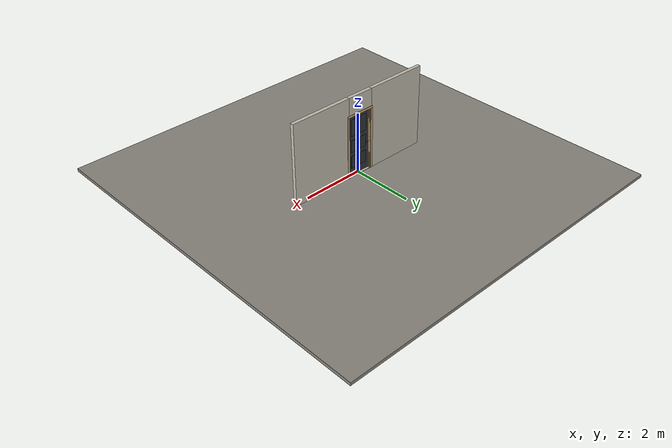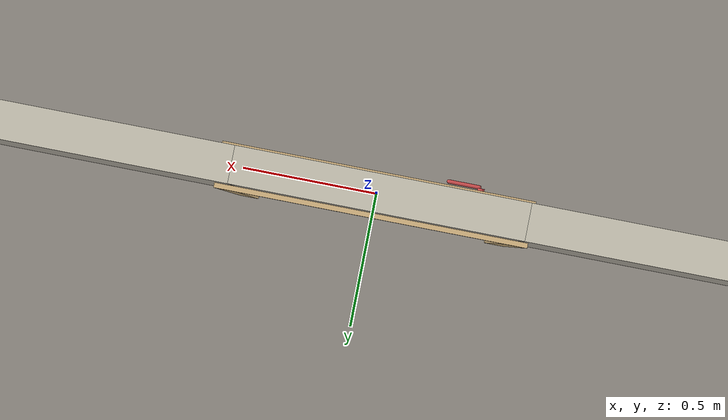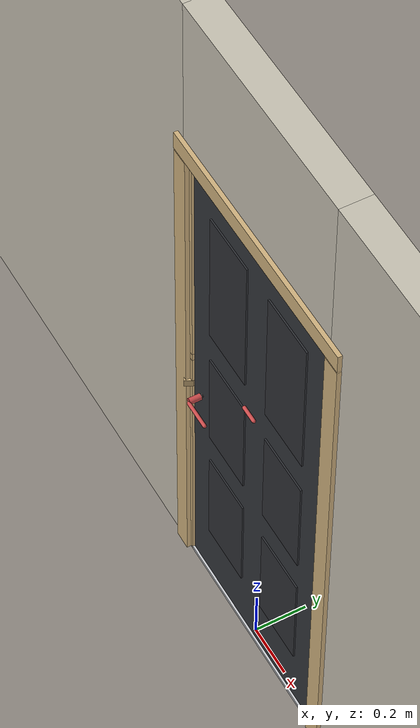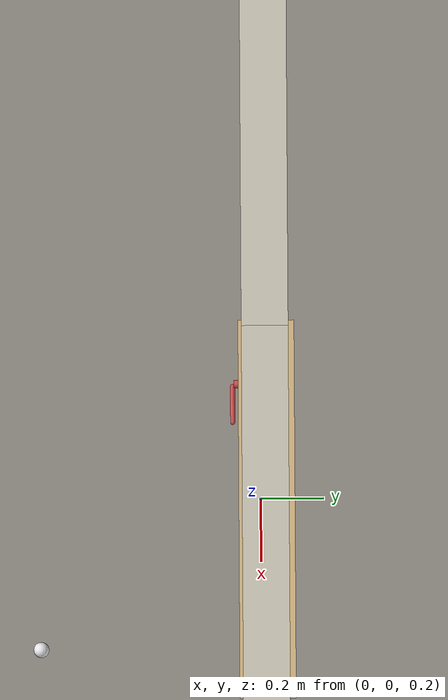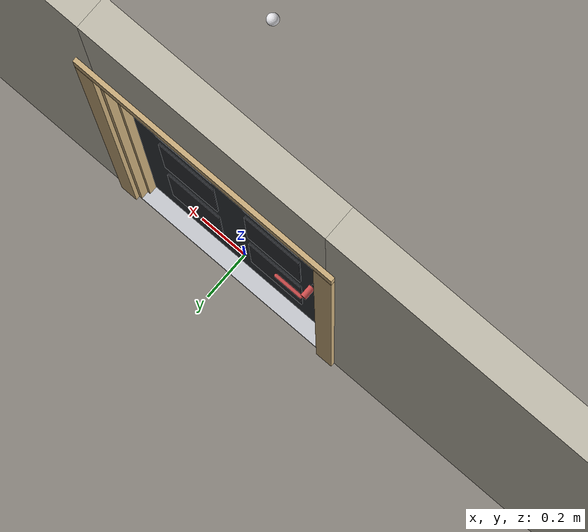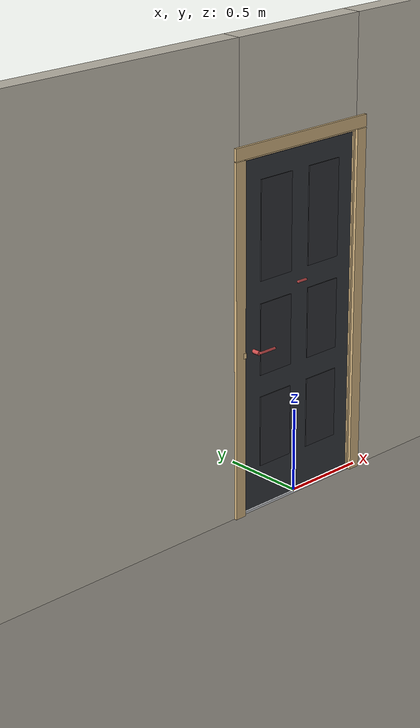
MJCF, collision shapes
<?xml version="1.0" ?>
<mujoco model="db0879_swing_single_full">
  <compiler angle="radian" meshdir="../../hardware" texturedir="../../textures" autolimits="true" inertiafromgeom="false"/>
  <option timestep="0.002" integrator="implicitfast" cone="elliptic" impratio="10" noslip_iterations="3">
    <flag multiccd="enable"/>
  </option>
  <size memory="16M"/>
  <default>
    <geom condim="4" solref="0.005 1" solimp="0.95 0.99 0.001"/>
    <joint solreflimit="0.005 1" solimplimit="0.95 0.99 0.001"/>
    <tendon solreflimit="0.005 1"/>
    <equality solref="0.002 1"/>
  </default>
  <visual>
    <headlight ambient="0.4 0.4 0.4" diffuse="0.7 0.7 0.7" specular="0.2 0.2 0.2"/>
    <quality shadowsize="4096"/>
    <map znear="0.01" zfar="60"/>
  </visual>
  <asset>
    <mesh name="cyl_face_e9e5036966" file="cyl_face_e9e5036966.obj"/>
    <mesh name="hinge_e22b26c0c1" file="hinge_e22b26c0c1.obj"/>
    <mesh name="hinge_jamb_e1d088f8dc" file="hinge_jamb_e1d088f8dc.obj"/>
    <mesh name="house_numbers_ad0a8e8be0" file="house_numbers_ad0a8e8be0.obj"/>
    <mesh name="knocker_a8f2ce0ad7" file="knocker_a8f2ce0ad7.obj"/>
    <mesh name="lever_57205841c3" file="lever_57205841c3.obj"/>
    <mesh name="peephole_f829311a59" file="peephole_f829311a59.obj"/>
    <material name="mat_floor" rgba="0.55 0.53 0.5 1" specular="0.2" shininess="0.15" reflectance="0"/>
    <material name="mat_wall" rgba="0.78 0.76 0.7 1" specular="0.2" shininess="0.1" reflectance="0"/>
    <material name="mat_leaf" rgba="0.2 0.21 0.23 1" specular="0.2" shininess="0.43" reflectance="0"/>
    <material name="mat_leaf_panel" rgba="0.184 0.193 0.212 1" specular="0.2" shininess="0.43" reflectance="0"/>
    <material name="mat_hinge" rgba="0.65 0.66 0.68 1" specular="0.74" shininess="0.5" reflectance="0.36"/>
    <material name="mat_op_black_matte_metal" rgba="0.05 0.05 0.05 1" specular="0.38" shininess="0.3" reflectance="0.12"/>
    <material name="mat_trim" rgba="0.85 0.66 0.3 1" specular="0.8" shininess="0.75" reflectance="0.4"/>
    <material name="mat_bolt" rgba="0.75 0.76 0.77 1" specular="0.8" shininess="0.65" reflectance="0.4"/>
    <material name="mat_deadbolt" rgba="0.85 0.66 0.3 1" specular="0.8" shininess="0.75" reflectance="0.4"/>
    <material name="mat_frame" rgba="0.82 0.7 0.5 1" specular="0.2" shininess="0.45" reflectance="0"/>
    <material name="mat_threshold" rgba="0.8 0.81 0.83 1" specular="0.8" shininess="0.6" reflectance="0.4"/>
    <material name="mat_peephole" rgba="0.85 0.66 0.3 1" specular="0.8" shininess="0.75" reflectance="0.4"/>
    <material name="mat_knocker" rgba="0.55 0.42 0.22 1" specular="0.74" shininess="0.45" reflectance="0.36"/>
    <material name="mat_numbers" rgba="0.05 0.05 0.05 1" specular="0.38" shininess="0.3" reflectance="0.12"/>
    <material name="mat_stop" rgba="0.9 0.9 0.92 1" specular="0.8" shininess="0.9" reflectance="0.4"/>
    <texture name="skybox" type="skybox" builtin="gradient" rgb1="0.6 0.7 0.85" rgb2="0.9 0.92 0.95" width="256" height="256"/>
  </asset>
  <worldbody>
    <light name="sun" pos="1.5 -2.5 4" dir="-0.3 0.5 -0.8" directional="true" diffuse="0.8 0.8 0.8" specular="0.3 0.3 0.3" castshadow="true"/>
    <light name="fill" pos="-1.5 2.5 3" dir="0.3 -0.5 -0.7" directional="true" diffuse="0.35 0.35 0.4" castshadow="false"/>
    <camera name="robot_view" pos="0 -2.513687 1.734312" xyaxes="1 0 0 0 0.26963 0.962964" fovy="52"/>
    <camera name="far_view" pos="0 2.570688 1.734312" xyaxes="-1 0 0 0 -0.26963 0.962964" fovy="52"/>
    <camera name="iso" pos="-1.932062 -2.106937 2.141063" xyaxes="0.741536 -0.670913 0 0.242917 0.268487 0.932151" fovy="46"/>
    <camera name="detail_handle" pos="-0.0745 -0.877 1.245" xyaxes="0.97561 0.219512 0 -0.070934 0.315262 0.94635" fovy="38"/>
    <geom name="floor" type="box" size="6 6 0.05" pos="0 0 -0.05" material="mat_floor" group="0" contype="1" conaffinity="1" friction="0.8 0.005 0.0001" density="2400"/>
    <geom name="wall_left" type="box" size="1.02025 0.0575 1.35" pos="-1.47975 0.0285 1.35" material="mat_wall" group="0" contype="1" conaffinity="1" friction="0.6 0.005 0.0001" density="800"/>
    <geom name="wall_right" type="box" size="1.03525 0.0575 1.35" pos="1.46475 0.0285 1.35" material="mat_wall" group="0" contype="1" conaffinity="1" friction="0.6 0.005 0.0001" density="800"/>
    <geom name="wall_header" type="box" size="0.4445 0.0575 0.303" pos="-0.015 0.0285 2.397" material="mat_wall" group="0" contype="1" conaffinity="1" friction="0.6 0.005 0.0001" density="800"/>
    <geom name="hinge_0_jamb" type="mesh" mesh="hinge_jamb_e1d088f8dc" pos="0.4075 -0.029 0.267" quat="0 0 1 0" material="mat_hinge" group="1" contype="0" conaffinity="0" density="7850"/>
    <geom name="hinge_1_jamb" type="mesh" mesh="hinge_jamb_e1d088f8dc" pos="0.4075 -0.029 1.029" quat="0 0 1 0" material="mat_hinge" group="1" contype="0" conaffinity="0" density="7850"/>
    <geom name="hinge_2_jamb" type="mesh" mesh="hinge_jamb_e1d088f8dc" pos="0.4075 -0.029 1.861" quat="0 0 1 0" material="mat_hinge" group="1" contype="0" conaffinity="0" density="7850"/>
    <geom name="leaf_deadbolt_strike_b" type="box" size="0.0155 0.003 0.0005" pos="-0.41 0 1.0865" quat="0.5 0.5 0.5 0.5" material="mat_deadbolt" group="1" contype="0" conaffinity="0" density="7800"/>
    <geom name="leaf_deadbolt_strike_l" type="box" size="0.003 0.0155 0.0005" pos="-0.41 -0.0125 1.105" quat="0.5 0.5 0.5 0.5" material="mat_deadbolt" group="1" contype="0" conaffinity="0" density="7800"/>
    <geom name="leaf_deadbolt_strike_t" type="box" size="0.0155 0.003 0.0005" pos="-0.41 0 1.1235" quat="0.5 0.5 0.5 0.5" material="mat_deadbolt" group="1" contype="0" conaffinity="0" density="7800"/>
    <geom name="leaf_deadbolt_strike_r" type="box" size="0.003 0.0155 0.0005" pos="-0.41 0.0125 1.105" quat="0.5 0.5 0.5 0.5" material="mat_deadbolt" group="1" contype="0" conaffinity="0" density="7800"/>
    <geom name="jamb_hinge" type="box" size="0.0095 0.0575 1.0225" pos="0.42 0.0285 1.0225" material="mat_frame" group="0" contype="1" conaffinity="1" friction="0.6 0.005 0.0001" density="400"/>
    <geom name="strike_965_wall_n" type="box" size="0.0245 0.03975 0.015" pos="-0.435 0.04625 0.965" material="mat_frame" group="0" contype="1" conaffinity="1" friction="0.6 0.005 0.0001" density="400"/>
    <geom name="strike_965_wall_p" type="box" size="0.0245 0.008 0.015" pos="-0.435 -0.0145 0.965" material="mat_frame" group="0" contype="1" conaffinity="1" friction="0.6 0.005 0.0001" density="400"/>
    <geom name="strike_965_ramp" type="box" size="0.0245 0.016771 0.015" pos="-0.439913 -0.026543 0.965" quat="0.973249 0 0 -0.229753" material="mat_frame" group="0" contype="1" conaffinity="1" friction="0.12 0.005 0.0001" density="400"/>
    <geom name="strike_965_back" type="box" size="0.0155 0.0065 0.015" pos="-0.444 0 0.965" material="mat_frame" group="0" contype="1" conaffinity="1" friction="0.6 0.005 0.0001" density="400"/>
    <geom name="strike_1105_wall_n" type="box" size="0.0245 0.03825 0.0155" pos="-0.435 0.04775 1.105" material="mat_frame" group="0" contype="1" conaffinity="1" friction="0.6 0.005 0.0001" density="400"/>
    <geom name="strike_1105_wall_p" type="box" size="0.0245 0.00975 0.0155" pos="-0.435 -0.01925 1.105" material="mat_frame" group="0" contype="1" conaffinity="1" friction="0.6 0.005 0.0001" density="400"/>
    <geom name="strike_1105_back" type="box" size="0.0098 0.0095 0.0155" pos="-0.4497 0 1.105" material="mat_frame" group="0" contype="1" conaffinity="1" friction="0.6 0.005 0.0001" density="400"/>
    <geom name="jamb_strike_0" type="box" size="0.0245 0.0575 0.475" pos="-0.435 0.0285 0.475" material="mat_frame" group="0" contype="1" conaffinity="1" friction="0.6 0.005 0.0001" density="400"/>
    <geom name="jamb_strike_1" type="box" size="0.0245 0.0575 0.05475" pos="-0.435 0.0285 1.03475" material="mat_frame" group="0" contype="1" conaffinity="1" friction="0.6 0.005 0.0001" density="400"/>
    <geom name="jamb_strike_2" type="box" size="0.0245 0.0575 0.46225" pos="-0.435 0.0285 1.58275" material="mat_frame" group="0" contype="1" conaffinity="1" friction="0.6 0.005 0.0001" density="400"/>
    <geom name="jamb_head" type="box" size="0.4445 0.0575 0.0095" pos="-0.015 0.0285 2.0545" material="mat_frame" group="0" contype="1" conaffinity="1" friction="0.6 0.005 0.0001" density="400"/>
    <geom name="head_stud" type="box" size="0.4445 0.0575 0.015" pos="-0.015 0.0285 2.079" material="mat_wall" group="0" contype="1" conaffinity="1" friction="0.6 0.005 0.0001" density="500"/>
    <geom name="stop_hinge" type="box" size="0.0055 0.016 1.0225" pos="0.405 0.0385 1.0225" material="mat_frame" group="0" contype="1" conaffinity="1" friction="0.6 0.005 0.0001" density="400"/>
    <geom name="stop_strike" type="box" size="0.0055 0.016 1.0225" pos="-0.405 0.0385 1.0225" material="mat_frame" group="0" contype="1" conaffinity="1" friction="0.6 0.005 0.0001" density="400"/>
    <geom name="stop_head" type="box" size="0.4105 0.016 0.0055" pos="0 0.0385 2.0395" material="mat_frame" group="0" contype="1" conaffinity="1" friction="0.6 0.005 0.0001" density="400"/>
    <geom name="casing_l_n" type="box" size="0.035 0.008 1.032" pos="-0.4595 -0.037 1.0225" material="mat_frame" group="2" contype="0" conaffinity="0" density="400"/>
    <geom name="casing_r_n" type="box" size="0.035 0.008 1.032" pos="0.4595 -0.037 1.0225" material="mat_frame" group="2" contype="0" conaffinity="0" density="400"/>
    <geom name="casing_h_n" type="box" size="0.4945 0.008 0.035" pos="0 -0.037 2.094" material="mat_frame" group="2" contype="0" conaffinity="0" density="400"/>
    <geom name="casing_l_p" type="box" size="0.035 0.008 1.032" pos="-0.4595 0.094 1.0225" material="mat_frame" group="2" contype="0" conaffinity="0" density="400"/>
    <geom name="casing_r_p" type="box" size="0.035 0.008 1.032" pos="0.4595 0.094 1.0225" material="mat_frame" group="2" contype="0" conaffinity="0" density="400"/>
    <geom name="casing_h_p" type="box" size="0.4945 0.008 0.035" pos="0 0.094 2.094" material="mat_frame" group="2" contype="0" conaffinity="0" density="400"/>
    <geom name="threshold" type="box" size="0.4295 0.0575 0.0065" pos="0 0.0285 0.0065" material="mat_threshold" group="0" contype="1" conaffinity="1" friction="0.5 0.005 0.0001" density="2700"/>
    <geom name="floor_stop_dome" type="sphere" size="0.025" pos="0.487653 -0.715677 0" material="mat_stop" group="0" contype="1" conaffinity="1" friction="0.6 0.005 0.0001" density="7000"/>
    <site name="approach_point" pos="0 -1.5 0" quat="1 0 0 0" size="0.05" rgba="0.2 0.9 0.2 0.5" group="4"/>
    <site name="goal_point" pos="0 1.5 0" quat="1 0 0 0" size="0.05" rgba="0.2 0.9 0.2 0.5" group="4"/>
    <site name="door_plane_center" pos="0 0 1.0225" quat="1 0 0 0" size="0.02" rgba="0.2 0.9 0.2 0.5" group="4"/>
    <body name="leaf" pos="0.4105 0 0">
      <inertial pos="-0.396894 -0.000977 1.034447" mass="20.705868" quat="0.500888 0.499347 -0.500836 0.498926" diaginertia="1.227915543 7.097601172 8.318015522"/>
      <joint name="leaf_hinge" type="hinge" axis="0 0 1" pos="-0.003 -0.029 0" limited="true" range="0 1.658063" damping="0.210326" frictionloss="0.092555" armature="0.02"/>
      <geom name="leaf_slab" type="box" size="0.4065 0.022 1.012" pos="-0.4095 0 1.029" material="mat_leaf" group="0" contype="1" conaffinity="1" friction="0.4 0.005 0.0001" density="1"/>
      <geom name="leaf_panel_0_n" type="box" size="0.11575 0.003 0.208024" pos="-0.22875 -0.025 0.467664" material="mat_leaf_panel" group="1" contype="0" conaffinity="0" density="1"/>
      <geom name="leaf_panel_0_p" type="box" size="0.11575 0.003 0.208024" pos="-0.22875 0.025 0.467664" material="mat_leaf_panel" group="1" contype="0" conaffinity="0" density="1"/>
      <geom name="leaf_panel_1_n" type="box" size="0.11575 0.003 0.208024" pos="-0.59025 -0.025 0.467664" material="mat_leaf_panel" group="1" contype="0" conaffinity="0" density="1"/>
      <geom name="leaf_panel_1_p" type="box" size="0.11575 0.003 0.208024" pos="-0.59025 0.025 0.467664" material="mat_leaf_panel" group="1" contype="0" conaffinity="0" density="1"/>
      <geom name="leaf_panel_2_n" type="box" size="0.11575 0.003 0.208024" pos="-0.22875 -0.025 1.013712" material="mat_leaf_panel" group="1" contype="0" conaffinity="0" density="1"/>
      <geom name="leaf_panel_2_p" type="box" size="0.11575 0.003 0.208024" pos="-0.22875 0.025 1.013712" material="mat_leaf_panel" group="1" contype="0" conaffinity="0" density="1"/>
      <geom name="leaf_panel_3_n" type="box" size="0.11575 0.003 0.208024" pos="-0.59025 -0.025 1.013712" material="mat_leaf_panel" group="1" contype="0" conaffinity="0" density="1"/>
      <geom name="leaf_panel_3_p" type="box" size="0.11575 0.003 0.208024" pos="-0.59025 0.025 1.013712" material="mat_leaf_panel" group="1" contype="0" conaffinity="0" density="1"/>
      <geom name="leaf_panel_4_n" type="box" size="0.11575 0.003 0.284032" pos="-0.22875 -0.025 1.635768" material="mat_leaf_panel" group="1" contype="0" conaffinity="0" density="1"/>
      <geom name="leaf_panel_4_p" type="box" size="0.11575 0.003 0.284032" pos="-0.22875 0.025 1.635768" material="mat_leaf_panel" group="1" contype="0" conaffinity="0" density="1"/>
      <geom name="leaf_panel_5_n" type="box" size="0.11575 0.003 0.284032" pos="-0.59025 -0.025 1.635768" material="mat_leaf_panel" group="1" contype="0" conaffinity="0" density="1"/>
      <geom name="leaf_panel_5_p" type="box" size="0.11575 0.003 0.284032" pos="-0.59025 0.025 1.635768" material="mat_leaf_panel" group="1" contype="0" conaffinity="0" density="1"/>
      <geom name="hinge_0" type="mesh" mesh="hinge_e22b26c0c1" pos="-0.003 -0.029 0.267" quat="0 0 1 0" material="mat_hinge" group="1" contype="0" conaffinity="0" density="7850"/>
      <geom name="hinge_1" type="mesh" mesh="hinge_e22b26c0c1" pos="-0.003 -0.029 1.029" quat="0 0 1 0" material="mat_hinge" group="1" contype="0" conaffinity="0" density="7850"/>
      <geom name="hinge_2" type="mesh" mesh="hinge_e22b26c0c1" pos="-0.003 -0.029 1.861" quat="0 0 1 0" material="mat_hinge" group="1" contype="0" conaffinity="0" density="7850"/>
      <geom name="leaf_latch_bolt_faceplate" type="box" size="0.0006 0.011 0.025" pos="-0.8154 0 0.965" material="mat_bolt" group="1" contype="0" conaffinity="0" density="8500"/>
      <geom name="leaf_deadbolt_faceplate" type="box" size="0.0006 0.014 0.0245" pos="-0.8154 0 1.105" material="mat_deadbolt" group="1" contype="0" conaffinity="0" density="8500"/>
      <geom name="leaf_deadbolt_cylinder_face" type="mesh" mesh="cyl_face_e9e5036966" pos="-0.751 -0.022 1.105" quat="0 0 -0.707107 0.707107" material="mat_deadbolt" group="1" contype="0" conaffinity="0" density="7100"/>
      <geom name="peephole" type="mesh" mesh="peephole_f829311a59" pos="-0.4095 -0.022 1.517" quat="0 0 -0.707107 0.707107" material="mat_peephole" group="2" contype="0" conaffinity="0" density="8500"/>
      <geom name="house_numbers" type="mesh" mesh="house_numbers_ad0a8e8be0" pos="-0.4095 -0.022 1.691" quat="0 0 -0.707107 0.707107" material="mat_numbers" group="2" contype="0" conaffinity="0" density="1000"/>
      <site name="leaf_edge_mid" pos="-0.816 0 1.012" quat="1 0 0 0" size="0.02" rgba="0.2 0.9 0.2 0.5" group="4"/>
      <body name="leaf_handle" pos="-0.761 0 0.965">
        <inertial pos="0.018425 0 0" mass="0.806444" quat="0 0.707107 0.707107 0" diaginertia="0.001006485 0.002593405 0.00349528"/>
        <joint name="leaf_handle_hinge" type="hinge" axis="0 1 0" limited="true" range="0 0.87" damping="0.212417" frictionloss="0.042" stiffness="1" springref="-0.35" armature="0.01"/>
        <geom name="leaf_handle_spindle" type="cylinder" size="0.006 0.03" pos="0 0 0" quat="0.707107 -0.707107 0 0" material="mat_op_black_matte_metal" group="1" contype="0" conaffinity="0" density="7850"/>
        <geom name="leaf_handle_lever_n" type="mesh" mesh="lever_57205841c3" pos="0 -0.022 0" quat="0 0 -0.707107 0.707107" material="mat_op_black_matte_metal" group="1" contype="0" conaffinity="0" density="3000"/>
        <geom name="leaf_handle_lever_col_n" type="capsule" size="0.007 0.053" pos="0.06 -0.077 0" quat="0.707107 0 0.707107 0" material="mat_op_black_matte_metal" group="3" contype="1" conaffinity="1" rgba="0.8 0.3 0.3 0.25" friction="0.7 0.01 0.0001" density="3000"/>
        <geom name="leaf_handle_hub_col_n" type="cylinder" size="0.012 0.022" pos="0 -0.052 0" quat="0.707107 -0.707107 0 0" material="mat_op_black_matte_metal" group="3" contype="1" conaffinity="1" rgba="0.8 0.3 0.3 0.25" friction="0.6 0.005 0.0001" density="3000"/>
        <geom name="leaf_handle_lever_p" type="mesh" mesh="lever_57205841c3" pos="0 0.022 0" quat="0 0 0.707107 0.707107" material="mat_op_black_matte_metal" group="1" contype="0" conaffinity="0" density="3000"/>
        <geom name="leaf_handle_lever_col_p" type="capsule" size="0.007 0.053" pos="0.06 0.077 0" quat="0.707107 0 0.707107 0" material="mat_op_black_matte_metal" group="3" contype="1" conaffinity="1" rgba="0.8 0.3 0.3 0.25" friction="0.7 0.01 0.0001" density="3000"/>
        <geom name="leaf_handle_hub_col_p" type="cylinder" size="0.012 0.022" pos="0 0.052 0" quat="0.707107 -0.707107 0 0" material="mat_op_black_matte_metal" group="3" contype="1" conaffinity="1" rgba="0.8 0.3 0.3 0.25" friction="0.6 0.005 0.0001" density="3000"/>
        <site name="leaf_handle_grip_n" pos="0.096 -0.077 0" quat="1 0 0 0" size="0.012" rgba="0.2 0.9 0.2 0.5" group="4"/>
        <site name="leaf_handle_grip_p" pos="0.096 0.077 0" quat="1 0 0 0" size="0.012" rgba="0.2 0.9 0.2 0.5" group="4"/>
      </body>
      <body name="leaf_latch_bolt" pos="-0.816 0 0.965">
        <inertial pos="0.008 0 0" mass="0.027149" quat="0 0 -0.707107 0.707107" diaginertia="0.000000328 0.000003943 0.000003943"/>
        <joint name="leaf_latch_bolt_slide" type="slide" axis="1 0 0" limited="true" range="0 0.014" damping="2" frictionloss="0.3" stiffness="400" springref="-0.01" armature="0.1"/>
        <geom name="leaf_latch_bolt_capsule" type="capsule" size="0.005 0.017" pos="0.008 0 0" quat="0.707107 0 -0.707107 0" material="mat_bolt" group="0" contype="1" conaffinity="1" friction="0.2 0.005 0.0001" density="8500"/>
      </body>
      <body name="leaf_deadbolt" pos="-0.816 0 1.105">
        <inertial pos="0.0023 0 0" mass="0.18836" quat="0 0 0.707107 0.707107" diaginertia="0.000013829 0.000052194 0.000057986"/>
        <geom name="leaf_deadbolt_box" type="box" size="0.0277 0.008 0.0125" pos="0.0023 0 0" material="mat_deadbolt" group="0" contype="1" conaffinity="1" friction="0.3 0.005 0.0001" density="8500"/>
      </body>
      <body name="knocker" pos="-0.4095 -0.022 1.297">
        <inertial pos="0 -0.010216 0.001203" mass="0.814961" quat="0.49606 0.50391 0.50391 -0.49606" diaginertia="0.000611431 0.001116108 0.001534609"/>
        <joint name="knocker_hinge" type="hinge" axis="-1 0 0" pos="0 0 0.055" limited="true" range="0 0.6" damping="0.005" armature="0.002"/>
        <geom name="knocker_mesh" type="mesh" mesh="knocker_a8f2ce0ad7" pos="0 0 0" quat="0 0 -0.707107 0.707107" material="mat_knocker" group="2" contype="0" conaffinity="0" density="8500"/>
        <geom name="knocker_col" type="capsule" size="0.007 0.03" pos="0 -0.025 -0.01" quat="0.707107 0 0.707107 0" material="mat_knocker" group="3" contype="1" conaffinity="1" rgba="0.8 0.3 0.3 0.25" friction="0.6 0.005 0.0001" density="8500"/>
      </body>
    </body>
  </worldbody>
  <tendon>
    <fixed name="leaf_latch_bolt_coupling" limited="true" range="0 10">
      <joint joint="leaf_latch_bolt_slide" coef="1"/>
      <joint joint="leaf_handle_hinge" coef="-0.017284"/>
    </fixed>
  </tendon>
  <sensor>
    <jointpos name="leaf_hinge_pos" joint="leaf_hinge"/>
    <jointvel name="leaf_hinge_vel" joint="leaf_hinge"/>
    <jointpos name="leaf_handle_hinge_pos" joint="leaf_handle_hinge"/>
    <jointvel name="leaf_handle_hinge_vel" joint="leaf_handle_hinge"/>
    <jointpos name="leaf_latch_bolt_slide_pos" joint="leaf_latch_bolt_slide"/>
    <jointvel name="leaf_latch_bolt_slide_vel" joint="leaf_latch_bolt_slide"/>
  </sensor>
</mujoco>
